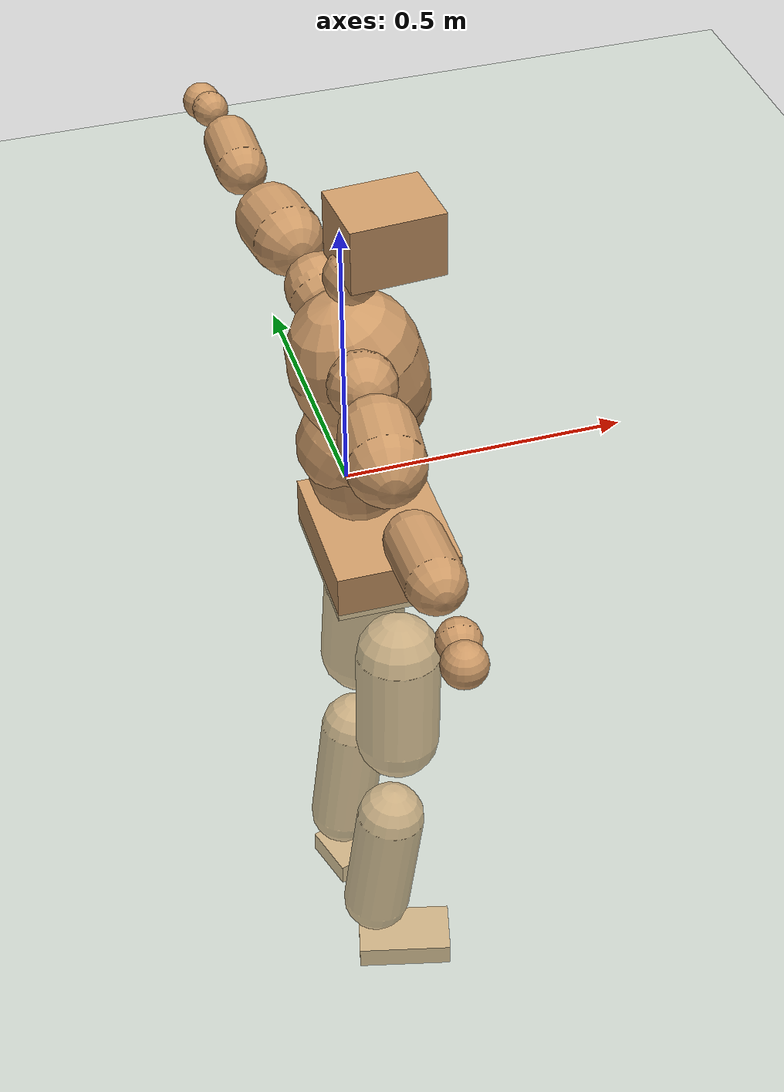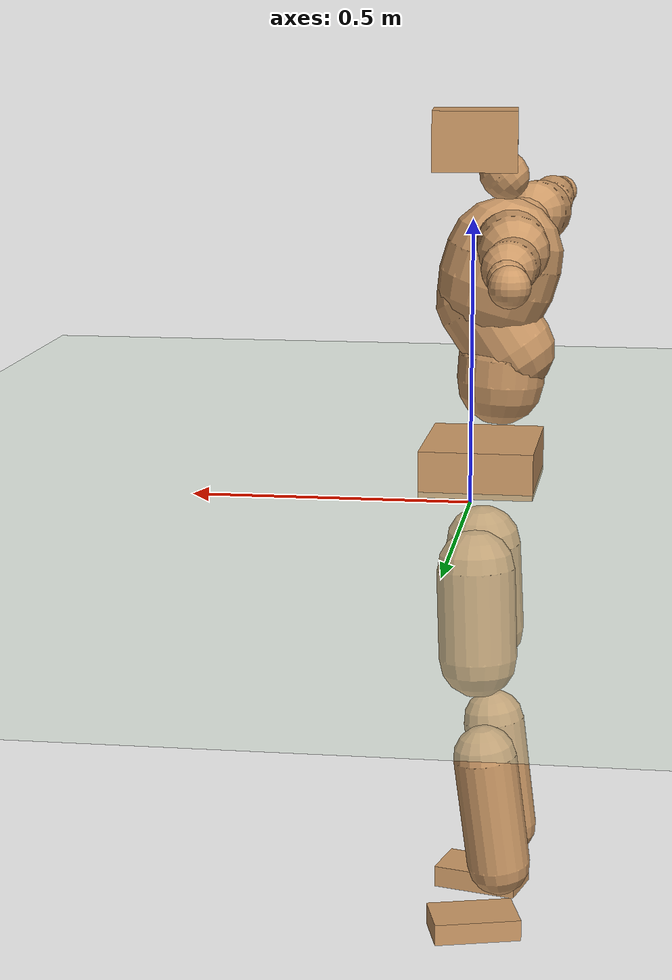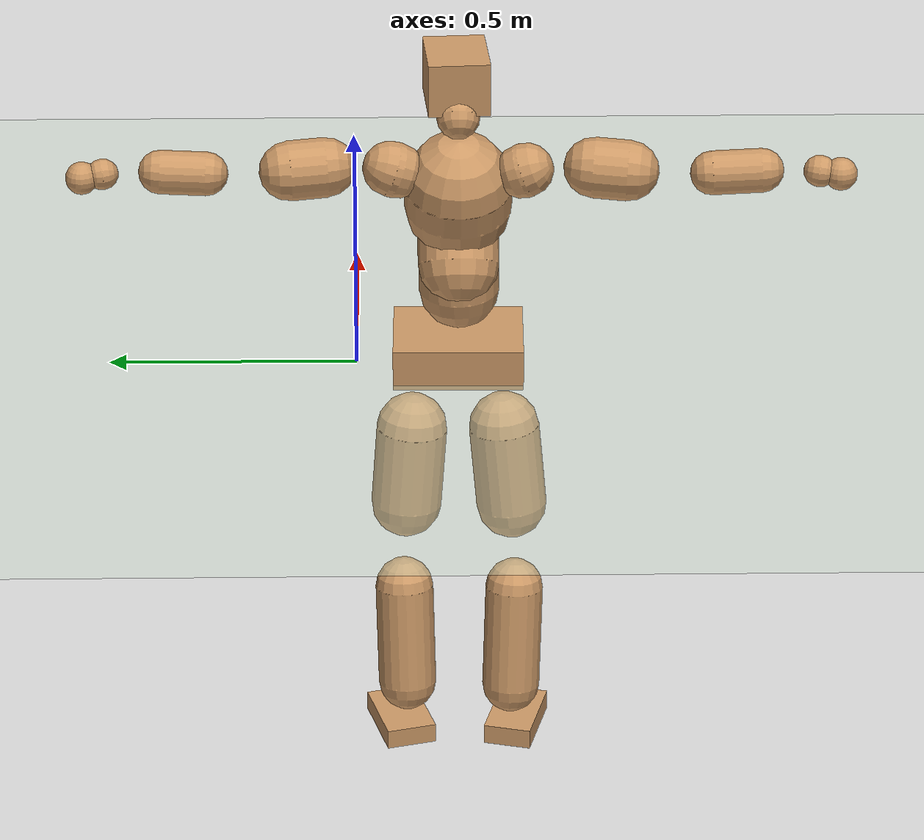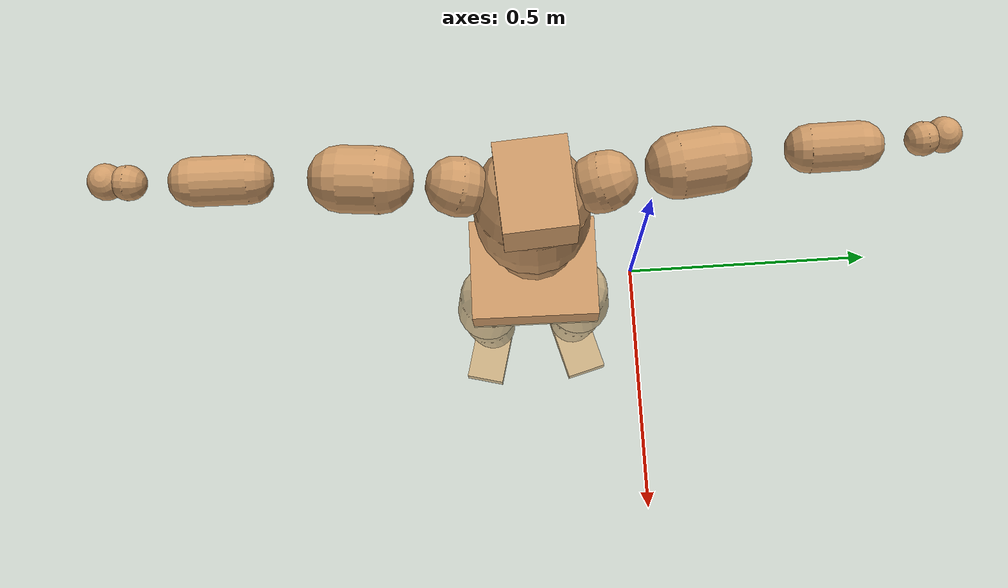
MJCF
<mujoco model="humanoid">
  <compiler coordinate="local" angle="radian"/>
  <default>
    <joint damping="0.0" armature="0.01" stiffness="0.0" limited="true"/>
    <geom conaffinity="1" condim="3" contype="7" margin="0.001" rgba="0.8 0.6 .4 1"/>
  </default>
  <asset>
    <texture type="skybox" builtin="gradient" rgb1=".4 .5 .6" rgb2="0 0 0" width="100" height="100"/>
    <texture builtin="flat" height="1278" mark="cross" markrgb="1 1 1" name="texgeom" random="0.01" rgb1="0.8 0.6 0.4" rgb2="0.8 0.6 0.4" type="cube" width="127"/>
    <texture builtin="checker" height="100" name="texplane" rgb1="0 0 0" rgb2="0.8 0.8 0.8" type="2d" width="100"/>
    <material name="MatPlane" reflectance="0.5" shininess="1" specular="1" texrepeat="60 60" texture="texplane"/>
    <material name="geom" texture="texgeom" texuniform="true"/>
  </asset>
  <worldbody>
    <light cutoff="100" diffuse="1 1 1" dir="-0 0 -1.3" directional="true" exponent="1" pos="0 0 1.3" specular=".1 .1 .1"/>
    <geom conaffinity="1" condim="3" name="floor" pos="0 0 0" rgba="0.8 0.9 0.8 1" size="100 100 .2" type="plane" material="MatPlane"/>
    <body name="Pelvis" pos="0.0016 -0.2056 0.043">
      <freejoint name="Pelvis"/>
      <geom type="box" contype="1" conaffinity="1" density="5359.375501" pos="-0.0050 0.0001 -0.0132" size="0.1041 0.131 0.0426" quat="1.0000 0.0000 0.0000 -0.0074" name="Pelvis"/>
      <body name="L_Hip" pos="0.0009 0.087 -0.0931">
        <joint name="L_Hip_x" type="hinge" pos="0 0 0" axis="1 0 0" stiffness="1600" damping="160" armature="0.02" range="-180.0000 180.0000"/>
        <joint name="L_Hip_y" type="hinge" pos="0 0 0" axis="0 1 0" stiffness="1600" damping="160" armature="0.02" range="-180.0000 180.0000"/>
        <joint name="L_Hip_z" type="hinge" pos="0 0 0" axis="0 0 1" stiffness="1600" damping="160" armature="0.02" range="-180.0000 180.0000"/>
        <geom type="capsule" contype="1" conaffinity="1" density="2040.816327" size="0.0724" fromto="-0.0042 0.0074 -0.1021 -0.0113 0.0196 -0.2709" name="L_Hip"/>
        <body name="L_Knee" pos="-0.0155 0.0269 -0.3729">
          <joint name="L_Knee_x" type="hinge" pos="0 0 0" axis="1 0 0" stiffness="1600" damping="160" armature="0.02" range="-180.0000 180.0000"/>
          <joint name="L_Knee_y" type="hinge" pos="0 0 0" axis="0 1 0" stiffness="1600" damping="160" armature="0.02" range="-180.0000 180.0000"/>
          <joint name="L_Knee_z" type="hinge" pos="0 0 0" axis="0 0 1" stiffness="1600" damping="160" armature="0.02" range="-180.0000 180.0000"/>
          <geom type="capsule" contype="1" conaffinity="1" density="1234.567901" size="0.0596" fromto="-0.0116 -0.0022 -0.0888 -0.0397 -0.0075 -0.3039" name="L_Knee"/>
          <body name="L_Ankle" pos="-0.0512 -0.0096 -0.3927">
            <joint name="L_Ankle_x" type="hinge" pos="0 0 0" axis="1 0 0" stiffness="1600" damping="160" armature="0.02" range="-180.0000 180.0000"/>
            <joint name="L_Ankle_y" type="hinge" pos="0 0 0" axis="0 1 0" stiffness="1600" damping="160" armature="0.02" range="-180.0000 180.0000"/>
            <joint name="L_Ankle_z" type="hinge" pos="0 0 0" axis="0 0 1" stiffness="1600" damping="160" armature="0.02" range="-180.0000 180.0000"/>
            <geom type="box" contype="1" conaffinity="1" density="1000.00003" pos="0.0571 0.0155 -0.0284" size="0.0825 0.0518 0.0205" quat="0.9912 0.0000 0.0000 0.1326" name="L_Ankle"/>
            <body name="L_Toe" pos="0.1141 0.0311 -0.0567">
              <joint name="L_Toe_x" type="hinge" pos="0 0 0" axis="1 0 0" stiffness="1000" damping="100" armature="0.02" range="-180.0000 180.0000"/>
              <joint name="L_Toe_y" type="hinge" pos="0 0 0" axis="0 1 0" stiffness="1000" damping="100" armature="0.02" range="-180.0000 180.0000"/>
              <joint name="L_Toe_z" type="hinge" pos="0 0 0" axis="0 0 1" stiffness="1000" damping="100" armature="0.02" range="-180.0000 180.0000"/>
              <geom type="box" contype="1" conaffinity="1" density="7943104.643744" pos="0.0000 0.0000 0.0294" size="0.001 0.0025 0.0011" quat="0.9904 0.0000 0.0000 0.1384" name="L_Toe"/>
            </body>
          </body>
        </body>
      </body>
      <body name="R_Hip" pos="0.0036 -0.0849 -0.093">
        <joint name="R_Hip_x" type="hinge" pos="0 0 0" axis="1 0 0" stiffness="1600" damping="160" armature="0.02" range="-180.0000 180.0000"/>
        <joint name="R_Hip_y" type="hinge" pos="0 0 0" axis="0 1 0" stiffness="1600" damping="160" armature="0.02" range="-180.0000 180.0000"/>
        <joint name="R_Hip_z" type="hinge" pos="0 0 0" axis="0 0 1" stiffness="1600" damping="160" armature="0.02" range="-180.0000 180.0000"/>
        <geom type="capsule" contype="1" conaffinity="1" density="2040.816327" size="0.0717" fromto="-0.0046 -0.0092 -0.1012 -0.0125 -0.0252 -0.2776" name="R_Hip"/>
        <body name="R_Knee" pos="-0.0171 -0.0343 -0.3787">
          <joint name="R_Knee_x" type="hinge" pos="0 0 0" axis="1 0 0" stiffness="1600" damping="160" armature="0.02" range="-180.0000 180.0000"/>
          <joint name="R_Knee_y" type="hinge" pos="0 0 0" axis="0 1 0" stiffness="1600" damping="160" armature="0.02" range="-180.0000 180.0000"/>
          <joint name="R_Knee_z" type="hinge" pos="0 0 0" axis="0 0 1" stiffness="1600" damping="160" armature="0.02" range="-180.0000 180.0000"/>
          <geom type="capsule" contype="1" conaffinity="1" density="1234.567901" size="0.0595" fromto="-0.0113 0.0027 -0.0888 -0.0390 0.0093 -0.3070" name="R_Knee"/>
          <body name="R_Ankle" pos="-0.0502 0.012 -0.3958">
            <joint name="R_Ankle_x" type="hinge" pos="0 0 0" axis="1 0 0" stiffness="1600" damping="160" armature="0.02" range="-180.0000 180.0000"/>
            <joint name="R_Ankle_y" type="hinge" pos="0 0 0" axis="0 1 0" stiffness="1600" damping="160" armature="0.02" range="-180.0000 180.0000"/>
            <joint name="R_Ankle_z" type="hinge" pos="0 0 0" axis="0 0 1" stiffness="1600" damping="160" armature="0.02" range="-180.0000 180.0000"/>
            <geom type="box" contype="1" conaffinity="1" density="999.999951" pos="0.0593 -0.0153 -0.0249" size="0.0832 0.0493 0.0211" quat="0.9920 0.0000 0.0000 -0.1260" name="R_Ankle"/>
            <body name="R_Toe" pos="0.1187 -0.0306 -0.0498">
              <joint name="R_Toe_x" type="hinge" pos="0 0 0" axis="1 0 0" stiffness="1000" damping="100" armature="0.02" range="-180.0000 180.0000"/>
              <joint name="R_Toe_y" type="hinge" pos="0 0 0" axis="0 1 0" stiffness="1000" damping="100" armature="0.02" range="-180.0000 180.0000"/>
              <joint name="R_Toe_z" type="hinge" pos="0 0 0" axis="0 0 1" stiffness="1000" damping="100" armature="0.02" range="-180.0000 180.0000"/>
              <geom type="box" contype="1" conaffinity="1" density="7869320.897567" pos="0.0000 0.0000 0.0264" size="0.001 0.0024 0.0011" quat="0.9932 0.0000 0.0000 -0.1163" name="R_Toe"/>
            </body>
          </body>
        </body>
      </body>
      <body name="Torso" pos="-0.0347 -0.0016 0.1069">
        <joint name="Torso_x" type="hinge" pos="0 0 0" axis="1 0 0" stiffness="2000" damping="200" armature="0.02" range="-180.0000 180.0000"/>
        <joint name="Torso_y" type="hinge" pos="0 0 0" axis="0 1 0" stiffness="2000" damping="200" armature="0.02" range="-180.0000 180.0000"/>
        <joint name="Torso_z" type="hinge" pos="0 0 0" axis="0 0 1" stiffness="2000" damping="200" armature="0.02" range="-180.0000 180.0000"/>
        <geom type="capsule" contype="1" conaffinity="1" density="2040.816327" size="0.0803" fromto="-0.0054 0.0014 0.0801 -0.0021 0.0005 0.0313" name="Torso"/>
        <body name="Spine" pos="-0.0075 0.0019 0.1114">
          <joint name="Spine_x" type="hinge" pos="0 0 0" axis="1 0 0" stiffness="2000" damping="200" armature="0.02" range="-180.0000 180.0000"/>
          <joint name="Spine_y" type="hinge" pos="0 0 0" axis="0 1 0" stiffness="2000" damping="200" armature="0.02" range="-180.0000 180.0000"/>
          <joint name="Spine_z" type="hinge" pos="0 0 0" axis="0 0 1" stiffness="2000" damping="200" armature="0.02" range="-180.0000 180.0000"/>
          <geom type="capsule" contype="1" conaffinity="1" density="2040.816327" size="0.0811" fromto="0.0450 0.0010 0.0674 -0.0129 -0.0003 -0.0193" name="Spine"/>
          <body name="Chest" pos="0.0321 0.0007 0.0481">
            <joint name="Chest_x" type="hinge" pos="0 0 0" axis="1 0 0" stiffness="2000" damping="200" armature="0.02" range="-180.0000 180.0000"/>
            <joint name="Chest_y" type="hinge" pos="0 0 0" axis="0 1 0" stiffness="2000" damping="200" armature="0.02" range="-180.0000 180.0000"/>
            <joint name="Chest_z" type="hinge" pos="0 0 0" axis="0 0 1" stiffness="2000" damping="200" armature="0.02" range="-180.0000 180.0000"/>
            <geom type="capsule" contype="1" conaffinity="1" density="2040.816327" size="0.1071" fromto="-0.0308 -0.0006 0.1025 -0.0156 -0.0003 0.0520" name="Chest"/>
            <body name="Neck" pos="-0.0542 -0.0009 0.2175">
              <joint name="Neck_x" type="hinge" pos="0 0 0" axis="1 0 0" stiffness="1000" damping="100" armature="0.02" range="-180.0000 180.0000"/>
              <joint name="Neck_y" type="hinge" pos="0 0 0" axis="0 1 0" stiffness="1000" damping="100" armature="0.02" range="-180.0000 180.0000"/>
              <joint name="Neck_z" type="hinge" pos="0 0 0" axis="0 0 1" stiffness="1000" damping="100" armature="0.02" range="-180.0000 180.0000"/>
              <geom type="capsule" contype="1" conaffinity="1" density="1000" size="0.0432" fromto="0.0279 0.0008 0.0330 0.0236 0.0007 0.0280" name="Neck"/>
              <body name="Head" pos="0.0515 0.0015 0.061">
                <joint name="Head_x" type="hinge" pos="0 0 0" axis="1 0 0" stiffness="1000" damping="100" armature="0.02" range="-180.0000 180.0000"/>
                <joint name="Head_y" type="hinge" pos="0 0 0" axis="0 1 0" stiffness="1000" damping="100" armature="0.02" range="-180.0000 180.0000"/>
                <joint name="Head_z" type="hinge" pos="0 0 0" axis="0 0 1" stiffness="1000" damping="100" armature="0.02" range="-180.0000 180.0000"/>
                <geom type="box" contype="1" conaffinity="1" density="2250.000165" pos="0.0268 0.0018 0.0315" size="0.0763 0.0612 0.0539" quat="0.9995 0.0000 0.0000 0.0329" name="Head"/>
              </body>
            </body>
            <body name="L_Thorax" pos="-0.0391 0.0826 0.1239">
              <joint name="L_Thorax_x" type="hinge" pos="0 0 0" axis="1 0 0" stiffness="1000" damping="100" armature="0.02" range="-180.0000 180.0000"/>
              <joint name="L_Thorax_y" type="hinge" pos="0 0 0" axis="0 1 0" stiffness="1000" damping="100" armature="0.02" range="-180.0000 180.0000"/>
              <joint name="L_Thorax_z" type="hinge" pos="0 0 0" axis="0 0 1" stiffness="1000" damping="100" armature="0.02" range="-180.0000 180.0000"/>
              <geom type="capsule" contype="1" conaffinity="1" density="1000" size="0.0551" fromto="-0.0070 0.0510 0.0196 -0.0052 0.0379 0.0146" name="L_Thorax"/>
              <body name="L_Shoulder" pos="-0.0122 0.0889 0.0342">
                <joint name="L_Shoulder_x" type="hinge" pos="0 0 0" axis="1 0 0" stiffness="1000" damping="100" armature="0.02" range="-720.0000 720.0000"/>
                <joint name="L_Shoulder_y" type="hinge" pos="0 0 0" axis="0 1 0" stiffness="1000" damping="100" armature="0.02" range="-720.0000 720.0000"/>
                <joint name="L_Shoulder_z" type="hinge" pos="0 0 0" axis="0 0 1" stiffness="1000" damping="100" armature="0.02" range="-720.0000 720.0000"/>
                <geom type="capsule" contype="1" conaffinity="1" density="1000" size="0.0594" fromto="-0.0107 0.0887 -0.0038 -0.0193 0.1606 -0.0068" name="L_Shoulder"/>
                <body name="L_Elbow" pos="-0.03 0.2493 -0.0106">
                  <joint name="L_Elbow_x" type="hinge" pos="0 0 0" axis="1 0 0" stiffness="1000" damping="100" armature="0.02" range="-720.0000 720.0000"/>
                  <joint name="L_Elbow_y" type="hinge" pos="0 0 0" axis="0 1 0" stiffness="1000" damping="100" armature="0.02" range="-720.0000 720.0000"/>
                  <joint name="L_Elbow_z" type="hinge" pos="0 0 0" axis="0 0 1" stiffness="1000" damping="100" armature="0.02" range="-720.0000 720.0000"/>
                  <geom type="capsule" contype="1" conaffinity="1" density="1000" size="0.0434" fromto="0.0006 0.0733 0.0033 0.0014 0.1628 0.0074" name="L_Elbow"/>
                  <body name="L_Wrist" pos="0.002 0.2362 0.0107">
                    <joint name="L_Wrist_x" type="hinge" pos="0 0 0" axis="1 0 0" stiffness="600" damping="60" armature="0.02" range="-180.0000 180.0000"/>
                    <joint name="L_Wrist_y" type="hinge" pos="0 0 0" axis="0 1 0" stiffness="600" damping="60" armature="0.02" range="-180.0000 180.0000"/>
                    <joint name="L_Wrist_z" type="hinge" pos="0 0 0" axis="0 0 1" stiffness="600" damping="60" armature="0.02" range="-180.0000 180.0000"/>
                    <geom type="capsule" contype="1" conaffinity="1" density="1000" size="0.0308" fromto="-0.0063 0.0389 -0.0047 -0.0066 0.0408 -0.0049" name="L_Wrist"/>
                    <body name="L_Hand" pos="-0.013 0.0797 -0.0096">
                      <joint name="L_Hand_x" type="hinge" pos="0 0 0" axis="1 0 0" stiffness="600" damping="60" armature="0.02" range="-180.0000 180.0000"/>
                      <joint name="L_Hand_y" type="hinge" pos="0 0 0" axis="0 1 0" stiffness="600" damping="60" armature="0.02" range="-180.0000 180.0000"/>
                      <joint name="L_Hand_z" type="hinge" pos="0 0 0" axis="0 0 1" stiffness="600" damping="60" armature="0.02" range="-180.0000 180.0000"/>
                      <geom type="sphere" contype="1" conaffinity="1" density="1000" size="0.0323" pos="0.0000 0.0000 0.0000" name="L_Hand"/>
                    </body>
                  </body>
                </body>
              </body>
            </body>
            <body name="R_Thorax" pos="-0.0457 -0.0844 0.1222">
              <joint name="R_Thorax_x" type="hinge" pos="0 0 0" axis="1 0 0" stiffness="1000" damping="100" armature="0.02" range="-180.0000 180.0000"/>
              <joint name="R_Thorax_y" type="hinge" pos="0 0 0" axis="0 1 0" stiffness="1000" damping="100" armature="0.02" range="-180.0000 180.0000"/>
              <joint name="R_Thorax_z" type="hinge" pos="0 0 0" axis="0 0 1" stiffness="1000" damping="100" armature="0.02" range="-180.0000 180.0000"/>
              <geom type="capsule" contype="1" conaffinity="1" density="1000" size="0.0541" fromto="-0.0071 -0.0499 0.0196 -0.0060 -0.0423 0.0166" name="R_Thorax"/>
              <body name="R_Shoulder" pos="-0.0131 -0.0922 0.0362">
                <joint name="R_Shoulder_x" type="hinge" pos="0 0 0" axis="1 0 0" stiffness="1000" damping="100" armature="0.02" range="-720.0000 720.0000"/>
                <joint name="R_Shoulder_y" type="hinge" pos="0 0 0" axis="0 1 0" stiffness="1000" damping="100" armature="0.02" range="-720.0000 720.0000"/>
                <joint name="R_Shoulder_z" type="hinge" pos="0 0 0" axis="0 0 1" stiffness="1000" damping="100" armature="0.02" range="-720.0000 720.0000"/>
                <geom type="capsule" contype="1" conaffinity="1" density="1000" size="0.0603" fromto="-0.0098 -0.0897 -0.0050 -0.0172 -0.1576 -0.0088" name="R_Shoulder"/>
                <body name="R_Elbow" pos="-0.0269 -0.2473 -0.0139">
                  <joint name="R_Elbow_x" type="hinge" pos="0 0 0" axis="1 0 0" stiffness="1000" damping="100" armature="0.02" range="-720.0000 720.0000"/>
                  <joint name="R_Elbow_y" type="hinge" pos="0 0 0" axis="0 1 0" stiffness="1000" damping="100" armature="0.02" range="-720.0000 720.0000"/>
                  <joint name="R_Elbow_z" type="hinge" pos="0 0 0" axis="0 0 1" stiffness="1000" damping="100" armature="0.02" range="-720.0000 720.0000"/>
                  <geom type="capsule" contype="1" conaffinity="1" density="1000" size="0.0437" fromto="0.0000 -0.0737 0.0036 0.0001 -0.1706 0.0083" name="R_Elbow"/>
                  <body name="R_Wrist" pos="0.0001 -0.2443 0.0119">
                    <joint name="R_Wrist_x" type="hinge" pos="0 0 0" axis="1 0 0" stiffness="600" damping="60" armature="0.02" range="-180.0000 180.0000"/>
                    <joint name="R_Wrist_y" type="hinge" pos="0 0 0" axis="0 1 0" stiffness="600" damping="60" armature="0.02" range="-180.0000 180.0000"/>
                    <joint name="R_Wrist_z" type="hinge" pos="0 0 0" axis="0 0 1" stiffness="600" damping="60" armature="0.02" range="-180.0000 180.0000"/>
                    <geom type="capsule" contype="1" conaffinity="1" density="1000" size="0.0317" fromto="-0.0052 -0.0394 -0.0036 -0.0055 -0.0414 -0.0038" name="R_Wrist"/>
                    <body name="R_Hand" pos="-0.0107 -0.0808 -0.0074">
                      <joint name="R_Hand_x" type="hinge" pos="0 0 0" axis="1 0 0" stiffness="600" damping="60" armature="0.02" range="-180.0000 180.0000"/>
                      <joint name="R_Hand_y" type="hinge" pos="0 0 0" axis="0 1 0" stiffness="600" damping="60" armature="0.02" range="-180.0000 180.0000"/>
                      <joint name="R_Hand_z" type="hinge" pos="0 0 0" axis="0 0 1" stiffness="600" damping="60" armature="0.02" range="-180.0000 180.0000"/>
                      <geom type="sphere" contype="1" conaffinity="1" density="1000" size="0.0327" pos="0.0000 0.0000 0.0000" name="R_Hand"/>
                    </body>
                  </body>
                </body>
              </body>
            </body>
          </body>
        </body>
      </body>
    </body>
  </worldbody>
  <actuator>
    <motor name="L_Hip_x" joint="L_Hip_x" gear="500"/>
    <motor name="L_Hip_y" joint="L_Hip_y" gear="500"/>
    <motor name="L_Hip_z" joint="L_Hip_z" gear="500"/>
    <motor name="L_Knee_x" joint="L_Knee_x" gear="500"/>
    <motor name="L_Knee_y" joint="L_Knee_y" gear="500"/>
    <motor name="L_Knee_z" joint="L_Knee_z" gear="500"/>
    <motor name="L_Ankle_x" joint="L_Ankle_x" gear="500"/>
    <motor name="L_Ankle_y" joint="L_Ankle_y" gear="500"/>
    <motor name="L_Ankle_z" joint="L_Ankle_z" gear="500"/>
    <motor name="L_Toe_x" joint="L_Toe_x" gear="500"/>
    <motor name="L_Toe_y" joint="L_Toe_y" gear="500"/>
    <motor name="L_Toe_z" joint="L_Toe_z" gear="500"/>
    <motor name="R_Hip_x" joint="R_Hip_x" gear="500"/>
    <motor name="R_Hip_y" joint="R_Hip_y" gear="500"/>
    <motor name="R_Hip_z" joint="R_Hip_z" gear="500"/>
    <motor name="R_Knee_x" joint="R_Knee_x" gear="500"/>
    <motor name="R_Knee_y" joint="R_Knee_y" gear="500"/>
    <motor name="R_Knee_z" joint="R_Knee_z" gear="500"/>
    <motor name="R_Ankle_x" joint="R_Ankle_x" gear="500"/>
    <motor name="R_Ankle_y" joint="R_Ankle_y" gear="500"/>
    <motor name="R_Ankle_z" joint="R_Ankle_z" gear="500"/>
    <motor name="R_Toe_x" joint="R_Toe_x" gear="500"/>
    <motor name="R_Toe_y" joint="R_Toe_y" gear="500"/>
    <motor name="R_Toe_z" joint="R_Toe_z" gear="500"/>
    <motor name="Torso_x" joint="Torso_x" gear="500"/>
    <motor name="Torso_y" joint="Torso_y" gear="500"/>
    <motor name="Torso_z" joint="Torso_z" gear="500"/>
    <motor name="Spine_x" joint="Spine_x" gear="500"/>
    <motor name="Spine_y" joint="Spine_y" gear="500"/>
    <motor name="Spine_z" joint="Spine_z" gear="500"/>
    <motor name="Chest_x" joint="Chest_x" gear="500"/>
    <motor name="Chest_y" joint="Chest_y" gear="500"/>
    <motor name="Chest_z" joint="Chest_z" gear="500"/>
    <motor name="Neck_x" joint="Neck_x" gear="500"/>
    <motor name="Neck_y" joint="Neck_y" gear="500"/>
    <motor name="Neck_z" joint="Neck_z" gear="500"/>
    <motor name="Head_x" joint="Head_x" gear="500"/>
    <motor name="Head_y" joint="Head_y" gear="500"/>
    <motor name="Head_z" joint="Head_z" gear="500"/>
    <motor name="L_Thorax_x" joint="L_Thorax_x" gear="500"/>
    <motor name="L_Thorax_y" joint="L_Thorax_y" gear="500"/>
    <motor name="L_Thorax_z" joint="L_Thorax_z" gear="500"/>
    <motor name="L_Shoulder_x" joint="L_Shoulder_x" gear="500"/>
    <motor name="L_Shoulder_y" joint="L_Shoulder_y" gear="500"/>
    <motor name="L_Shoulder_z" joint="L_Shoulder_z" gear="500"/>
    <motor name="L_Elbow_x" joint="L_Elbow_x" gear="500"/>
    <motor name="L_Elbow_y" joint="L_Elbow_y" gear="500"/>
    <motor name="L_Elbow_z" joint="L_Elbow_z" gear="500"/>
    <motor name="L_Wrist_x" joint="L_Wrist_x" gear="500"/>
    <motor name="L_Wrist_y" joint="L_Wrist_y" gear="500"/>
    <motor name="L_Wrist_z" joint="L_Wrist_z" gear="500"/>
    <motor name="L_Hand_x" joint="L_Hand_x" gear="500"/>
    <motor name="L_Hand_y" joint="L_Hand_y" gear="500"/>
    <motor name="L_Hand_z" joint="L_Hand_z" gear="500"/>
    <motor name="R_Thorax_x" joint="R_Thorax_x" gear="500"/>
    <motor name="R_Thorax_y" joint="R_Thorax_y" gear="500"/>
    <motor name="R_Thorax_z" joint="R_Thorax_z" gear="500"/>
    <motor name="R_Shoulder_x" joint="R_Shoulder_x" gear="500"/>
    <motor name="R_Shoulder_y" joint="R_Shoulder_y" gear="500"/>
    <motor name="R_Shoulder_z" joint="R_Shoulder_z" gear="500"/>
    <motor name="R_Elbow_x" joint="R_Elbow_x" gear="500"/>
    <motor name="R_Elbow_y" joint="R_Elbow_y" gear="500"/>
    <motor name="R_Elbow_z" joint="R_Elbow_z" gear="500"/>
    <motor name="R_Wrist_x" joint="R_Wrist_x" gear="500"/>
    <motor name="R_Wrist_y" joint="R_Wrist_y" gear="500"/>
    <motor name="R_Wrist_z" joint="R_Wrist_z" gear="500"/>
    <motor name="R_Hand_x" joint="R_Hand_x" gear="500"/>
    <motor name="R_Hand_y" joint="R_Hand_y" gear="500"/>
    <motor name="R_Hand_z" joint="R_Hand_z" gear="500"/>
  </actuator>
  <contact>
    <exclude body1="Torso" body2="Chest"/>
    <exclude body1="Head" body2="Chest"/>
    <exclude body1="R_Knee" body2="R_Toe"/>
    <exclude body1="R_Knee" body2="L_Ankle"/>
    <exclude body1="R_Knee" body2="L_Toe"/>
    <exclude body1="L_Knee" body2="L_Toe"/>
    <exclude body1="L_Knee" body2="R_Ankle"/>
    <exclude body1="L_Knee" body2="R_Toe"/>
    <exclude body1="L_Shoulder" body2="Chest"/>
    <exclude body1="R_Shoulder" body2="Chest"/>
  </contact>
  <sensor/>
  <size njmax="700" nconmax="700"/>
</mujoco>
